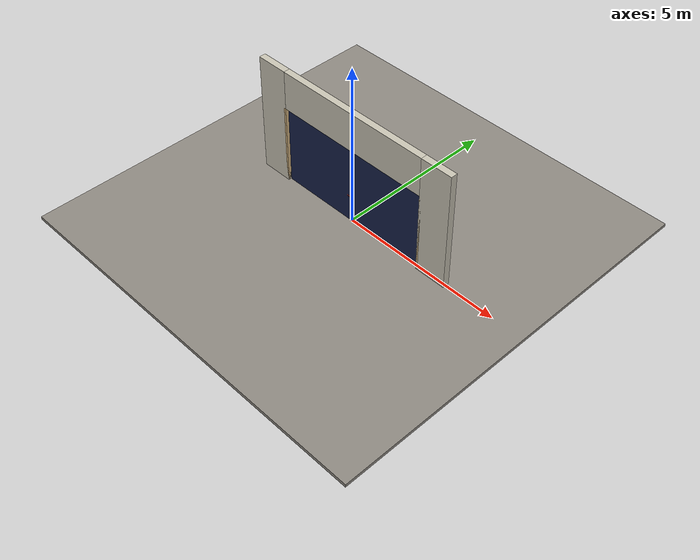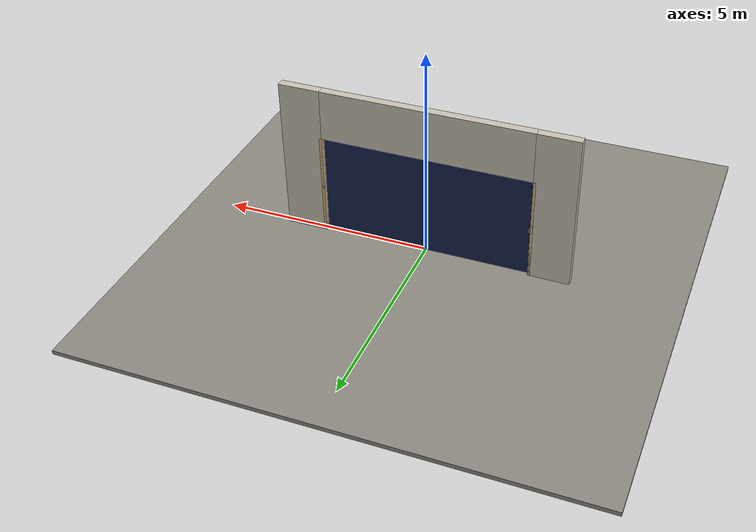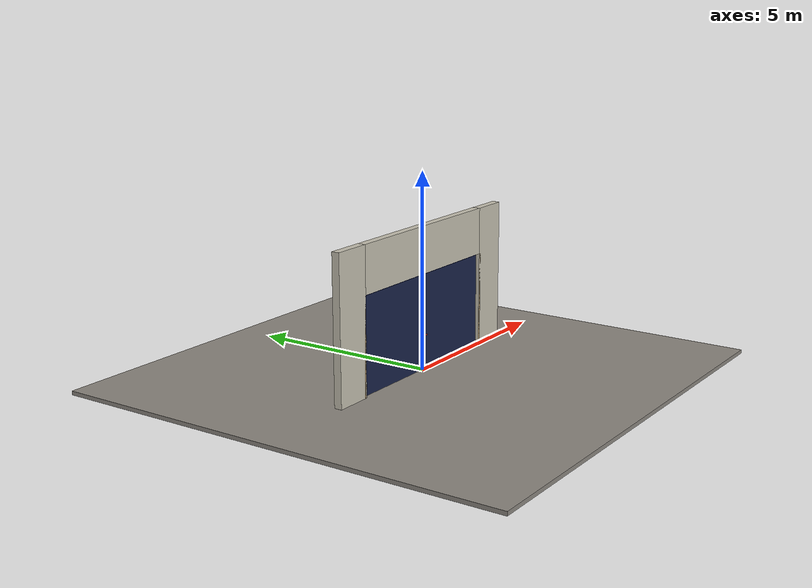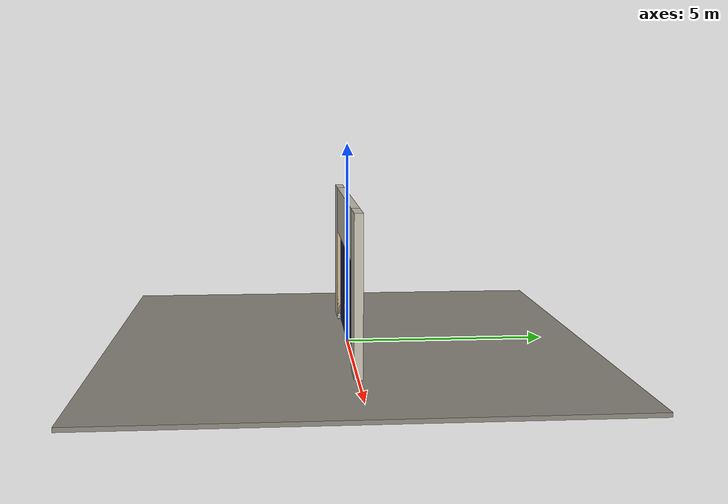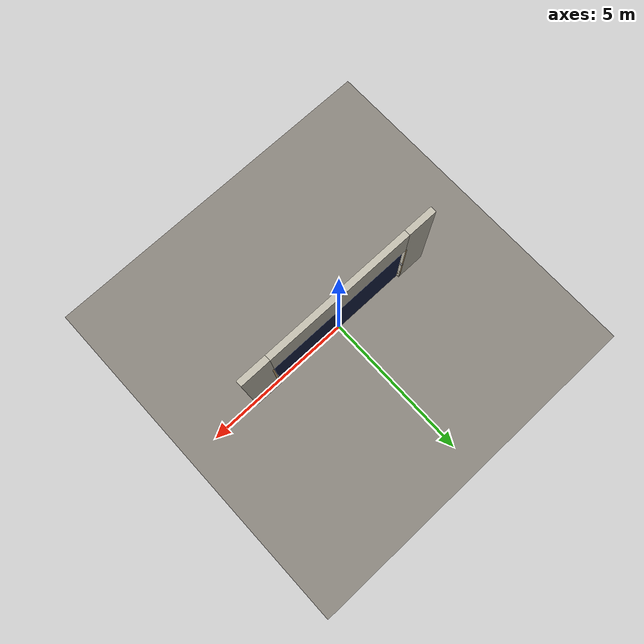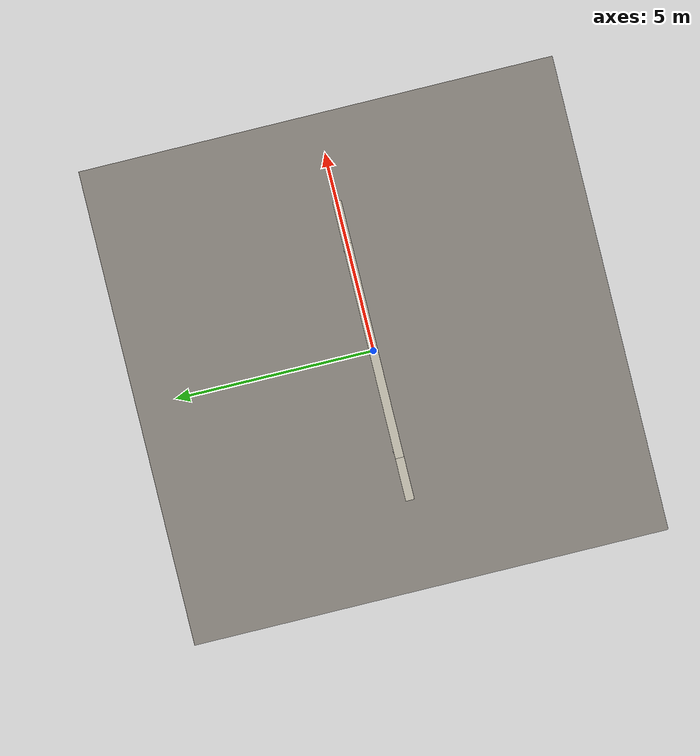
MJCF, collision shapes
<?xml version="1.0" ?>
<mujoco model="db0758_garage_tiltup_simple">
  <compiler angle="radian" meshdir="../../hardware" texturedir="../../textures" autolimits="true" inertiafromgeom="false"/>
  <option timestep="0.002" integrator="implicitfast" cone="elliptic" impratio="10" noslip_iterations="3">
    <flag multiccd="enable"/>
  </option>
  <size memory="16M"/>
  <default>
    <geom condim="4" solref="0.005 1" solimp="0.95 0.99 0.001"/>
    <joint solreflimit="0.005 1" solimplimit="0.95 0.99 0.001"/>
    <tendon solreflimit="0.005 1"/>
    <equality solref="0.002 1"/>
  </default>
  <visual>
    <headlight ambient="0.4 0.4 0.4" diffuse="0.7 0.7 0.7" specular="0.2 0.2 0.2"/>
    <quality shadowsize="4096"/>
    <map znear="0.01" zfar="60"/>
  </visual>
  <asset>
    <mesh name="pull_bdc5e965ab" file="pull_bdc5e965ab.obj"/>
    <material name="mat_floor" rgba="0.55 0.53 0.5 1" specular="0.2" shininess="0.15" reflectance="0"/>
    <material name="mat_wall" rgba="0.78 0.76 0.7 1" specular="0.2" shininess="0.1" reflectance="0"/>
    <material name="mat_frame" rgba="0.82 0.7 0.5 1" specular="0.2" shininess="0.45" reflectance="0"/>
    <material name="mat_door" rgba="0.09 0.13 0.28 1" specular="0.23" shininess="0.46" reflectance="0.02"/>
    <material name="mat_track" rgba="0.65 0.66 0.68 1" specular="0.74" shininess="0.5" reflectance="0.36"/>
    <material name="mat_op_black_matte_metal" rgba="0.05 0.05 0.05 1" specular="0.38" shininess="0.3" reflectance="0.12"/>
    <texture name="skybox" type="skybox" builtin="gradient" rgb1="0.6 0.7 0.85" rgb2="0.9 0.92 0.95" width="256" height="256"/>
  </asset>
  <worldbody>
    <light name="sun" pos="1.5 -2.5 4" dir="-0.3 0.5 -0.8" directional="true" diffuse="0.8 0.8 0.8" specular="0.3 0.3 0.3" castshadow="true"/>
    <light name="fill" pos="-1.5 2.5 3" dir="0.3 -0.5 -0.7" directional="true" diffuse="0.35 0.35 0.4" castshadow="false"/>
    <camera name="robot_view" pos="0 -5.246875 2.714125" xyaxes="1 0 0 0 0.26963 0.962964" fovy="52"/>
    <camera name="far_view" pos="0 5.246875 2.714125" xyaxes="-1 0 0 0 -0.26963 0.962964" fovy="52"/>
    <camera name="iso" pos="3.987625 -4.407375 3.553625" xyaxes="0.741536 0.670913 0 -0.242917 0.268487 0.932151" fovy="46"/>
    <camera name="detail_handle" pos="0.25 -1.1725 1.25" xyaxes="0.975133 0.221621 0 -0.065674 0.288965 0.955084" fovy="38"/>
    <geom name="floor" type="box" size="6 6 0.05" pos="0 0 -0.05" material="mat_floor" group="0" contype="1" conaffinity="1" friction="0.8 0.005 0.0001" density="2400"/>
    <geom name="wall_left" type="box" size="0.4875 0.1 1.845" pos="-2.9525 0 1.845" material="mat_wall" group="0" contype="1" conaffinity="1" friction="0.6 0.005 0.0001" density="800"/>
    <geom name="wall_right" type="box" size="0.4875 0.1 1.845" pos="2.9525 0 1.845" material="mat_wall" group="0" contype="1" conaffinity="1" friction="0.6 0.005 0.0001" density="800"/>
    <geom name="wall_header" type="box" size="2.465 0.1 0.6" pos="0 0 3.09" material="mat_wall" group="0" contype="1" conaffinity="1" friction="0.6 0.005 0.0001" density="800"/>
    <geom name="jamb_l" type="box" size="0.03 0.1 1.245" pos="-2.495 0 1.245" material="mat_frame" group="0" contype="1" conaffinity="1" friction="0.6 0.005 0.0001" density="400"/>
    <geom name="pivot_bracket_l" type="box" size="0.02 0.06 0.03" pos="-2.46 0.06 1.22" material="mat_track" group="1" contype="0" conaffinity="0" density="7850"/>
    <geom name="jamb_r" type="box" size="0.03 0.1 1.245" pos="2.495 0 1.245" material="mat_frame" group="0" contype="1" conaffinity="1" friction="0.6 0.005 0.0001" density="400"/>
    <geom name="pivot_bracket_r" type="box" size="0.02 0.06 0.03" pos="2.46 0.06 1.22" material="mat_track" group="1" contype="0" conaffinity="0" density="7850"/>
    <site name="approach_point" pos="0 -2 0" quat="1 0 0 0" size="0.05" rgba="0.2 0.9 0.2 0.5" group="4"/>
    <site name="goal_point" pos="0 2 0" quat="1 0 0 0" size="0.05" rgba="0.2 0.9 0.2 0.5" group="4"/>
    <site name="door_plane_center" pos="0 0 1.245" quat="1 0 0 0" size="0.02" rgba="0.2 0.9 0.2 0.5" group="4"/>
    <body name="door" pos="0 0 1.22">
      <inertial pos="0 -0.000247 0.008718" mass="130.89312" quat="0 0 -0.707049 0.707165" diaginertia="64.767461297 258.778902112 323.498039341"/>
      <joint name="door_hinge" type="hinge" axis="-1 0 0" limited="true" range="0 1.53589" damping="21.089312" frictionloss="6.540348" armature="0.5"/>
      <geom name="door_slab" type="box" size="2.44 0.0225 1.22" pos="0 0 0.01" material="mat_door" group="0" contype="1" conaffinity="1" friction="0.4 0.005 0.0001" density="1"/>
      <geom name="lift_handle_n" type="mesh" mesh="pull_bdc5e965ab" pos="0 -0.0225 -0.32" quat="0.707107 0.707107 0 0" material="mat_op_black_matte_metal" group="1" contype="0" conaffinity="0" density="3000"/>
      <geom name="lift_handle_col_n" type="box" size="0.1 0.006 0.015" pos="0 -0.0725 -0.32" material="mat_op_black_matte_metal" group="3" contype="1" conaffinity="1" rgba="0.8 0.3 0.3 0.25" friction="0.6 0.005 0.0001" density="3000"/>
      <site name="lift_handle_grip_n" pos="0 -0.0725 -0.32" quat="1 0 0 0" size="0.012" rgba="0.2 0.9 0.2 0.5" group="4"/>
    </body>
  </worldbody>
  <sensor>
    <jointpos name="door_hinge_pos" joint="door_hinge"/>
    <jointvel name="door_hinge_vel" joint="door_hinge"/>
  </sensor>
</mujoco>
